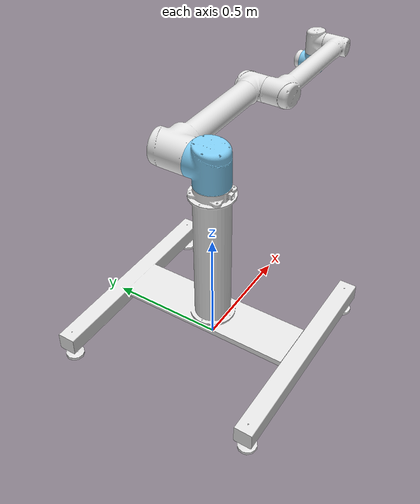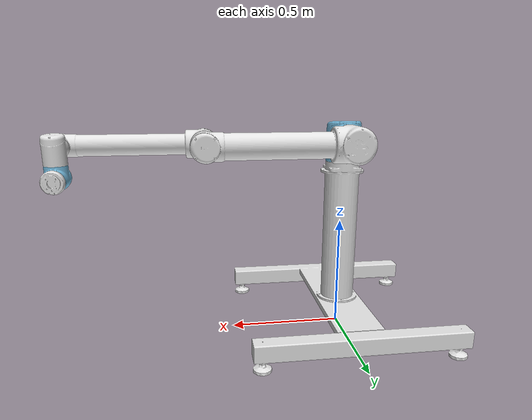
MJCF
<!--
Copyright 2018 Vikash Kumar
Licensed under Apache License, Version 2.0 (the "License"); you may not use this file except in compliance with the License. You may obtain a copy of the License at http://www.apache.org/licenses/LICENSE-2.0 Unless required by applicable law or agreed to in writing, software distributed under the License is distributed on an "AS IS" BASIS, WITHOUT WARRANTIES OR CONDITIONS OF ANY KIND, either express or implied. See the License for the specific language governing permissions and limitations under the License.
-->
<mujoco model="ur10(V 1.50)">
    <compiler angle="radian"/>
    <size njmax="500" nconmax="100" />
    <asset>
        <mesh name="ur_pedestal" file="meshes/pedestal.stl" scale='.001 .001 .001'/>
		<mesh name="ur_base" file="meshes/base.stl" />
        <mesh name="ur_shoulder" file="meshes/shoulder.stl" />
        <mesh name="ur_upperarm" file="meshes/upperarm.stl" />
        <mesh name="ur_forearm" file="meshes/forearm.stl" />
        <mesh name="ur_wrist1" file="meshes/wrist1.stl" />
        <mesh name="ur_wrist2" file="meshes/wrist2.stl" />
        <mesh name="ur_wrist3" file="meshes/wrist3.stl" />
        <mesh name="ur_simple_base" file="meshes/simple_base.stl" />
        <mesh name="ur_simple_shoulder" file="meshes/simple_shoulder.stl" />
        <mesh name="ur_simple_upperarm" file="meshes/simple_upperarm.stl" />
        <mesh name="ur_simple_forearm" file="meshes/simple_forearm.stl" />
        <mesh name="ur_simple_wrist1" file="meshes/simple_wrist1.stl" />
        <mesh name="ur_simple_wrist2" file="meshes/simple_wrist2.stl" />
        <mesh name="ur_simple_wrist3" file="meshes/simple_wrist3.stl" />

		<texture name="ur_groundplane" type="2d" builtin="checker" rgb1=".25 .26 .25"
			rgb2=".22 .22 .22" width="100" height="100" mark="none" markrgb=".8 .8 .8"/>
		<material name="ur_MatColl" specular="1" shininess=".3" reflectance="0.5" rgba=".4 .5 .6 1"/>
		<material name="ur_MatViz" specular="1" shininess=".1" reflectance="0.5" rgba=".9 .9 .9 1"/>
		<material name="ur_MatGnd" texture="ur_groundplane"  texrepeat="5 5" specular="1" shininess=".3" reflectance="0.00001"/>
    </asset>

	<visual>
        <map fogstart="1.5" fogend="4" force="0.1"/>
        <quality shadowsize="4096"/>
    </visual>

	<default>
		<geom material="ur_MatColl" contype="0" conaffinity="1" group="4" type="mesh"/>
		<joint limited="true" damping="50" armature=".001" margin="0.01" frictionloss="100"/>

		<!--Viz geoms-->
		<default class="ur_viz">
			<geom material="ur_MatViz" contype="0" conaffinity="0" group="1"/>
		</default>
	</default>

    <worldbody>

	<light directional="false" cutoff="40" diffuse=".3 .3 .35" specular=".1 .1 .1" pos="1 .3 5" dir="-1 -.1 -5 "/>

		<!-- ======= Ground ======= -->
		<geom name="ground" type="plane" pos="0 0 0" material="ur_MatGnd" size="5 5 2" contype="1" conaffinity="1"/>
		<geom class="ur_viz" name='ur_pedestal' pos='0 0 0' type='mesh' mesh='ur_pedestal' euler='0 0 1.57'/>

        <body name="ur_ur_base_link" pos="0 0 .74">
            <inertial pos="0 0 0" quat="0.5 0.5 -0.5 0.5" mass="4" diaginertia="0.01125 0.00610633 0.00610633" />
            <geom class="ur_viz" mesh="ur_base" />
            <geom mesh="ur_simple_base" />
            <body name="ur_shoulder_link" pos="0 0 0.1273">
                <inertial pos="0 0 0" mass="7.778" diaginertia="0.0314743 0.0314743 0.0218756" />
                <joint name="ur_shoulder_pan_joint" pos="0 0 0" axis="0 0 1" limited="true" range="-6.28319 6.28319" />
                <geom class="ur_viz" mesh="ur_shoulder" rgba=".5 .8 .95 1"/>
                <geom mesh="ur_simple_shoulder" />
                <body name="ur_upper_arm_link" pos="0 0.220941 0" quat="0.707107 0 0.707107 0">
                    <inertial pos="0 0 0.306" mass="12.93" diaginertia="0.421754 0.421754 0.0363656" />
                    <joint name="ur_shoulder_lift_joint" pos="0 0 0" axis="0 1 0" limited="true" range="-6.28319 6.28319" />
                    <geom class="ur_viz" mesh="ur_upperarm" />
                    <geom mesh="ur_simple_upperarm" />
                    <body name="ur_forearm_link" pos="0 -0.1719 0.612">
                        <inertial pos="0 0 0.28615" mass="3.87" diaginertia="0.11107 0.11107 0.0108844" />
                        <joint name="ur_elbow_joint" pos="0 0 0" axis="0 1 0" limited="true" range="-6.28319 6.28319" />
                        <geom class="ur_viz" mesh="ur_forearm" />
                        <geom mesh="ur_simple_forearm" />
                        <body name="ur_wrist_1_link" pos="0 0 0.5723" quat="0.707107 0 0.707107 0">
                            <inertial pos="0 0 0" quat="0.5 0.5 -0.5 0.5" mass="1.96" diaginertia="0.0055125 0.00510825 0.00510825" />
                            <joint name="ur_wrist_1_joint" pos="0 0 0" axis="0 1 0" limited="true" range="-6.28319 6.28319" />
                            <geom class="ur_viz" mesh="ur_wrist1" />
                            <geom mesh="ur_simple_wrist1" />
                            <body name="ur_wrist_2_link" pos="0 0.1149 0">
                                <inertial pos="0 0 0" quat="0.5 0.5 -0.5 0.5" mass="1.96" diaginertia="0.0055125 0.00510825 0.00510825" />
                                <joint name="ur_wrist_2_joint" pos="0 0 0" axis="0 0 1" limited="true" range="-6.28319 6.28319" />
                                <geom class="ur_viz" mesh="ur_wrist2" rgba=".5 .8 .95 1"/>
                                <geom mesh="ur_simple_wrist2" />
                                <body name="ur_wrist_3_link" pos="0 0 0.1157">
                                    <inertial pos="0 0 0" quat="0.5 0.5 -0.5 0.5" mass="0.202" diaginertia="0.000568125 0.000526462 0.000526462" />
                                    <joint name="ur_wrist_3_joint" pos="0 0 0" axis="0 1 0" limited="true" range="-6.28319 6.28319" />
                                    <geom class="ur_viz" mesh="ur_wrist3" />
                                    <geom mesh="ur_simple_wrist3" />
                                </body>
                            </body>
                        </body>
                    </body>
                </body>
            </body>
        </body>
    </worldbody>

	<actuator>
		<position name="ur_shoulder_pan_joint" joint="ur_shoulder_pan_joint" ctrllimited='true' ctrlrange="-1.57 1.57" kp="1000"/>
		<position name="ur_shoulder_lift_joint" joint="ur_shoulder_lift_joint" ctrllimited='true' ctrlrange="-1.57 1.57" kp="1000"/>
		<position name="ur_elbow_joint" joint="ur_elbow_joint" ctrllimited='true' ctrlrange="-1.57 1.57" kp="600"/>
		<position name="ur_wrist_1_joint" joint="ur_wrist_1_joint" ctrllimited='true' ctrlrange="-1.57 1.57" kp="200"/>
		<position name="ur_wrist_2_joint" joint="ur_wrist_2_joint" ctrllimited='true' ctrlrange="-1.57 1.57" kp="200"/>
		<position name="ur_wrist_3_joint" joint="ur_wrist_3_joint" ctrllimited='true' ctrlrange="-1.57 1.57" kp="200"/>
	</actuator>

</mujoco>
